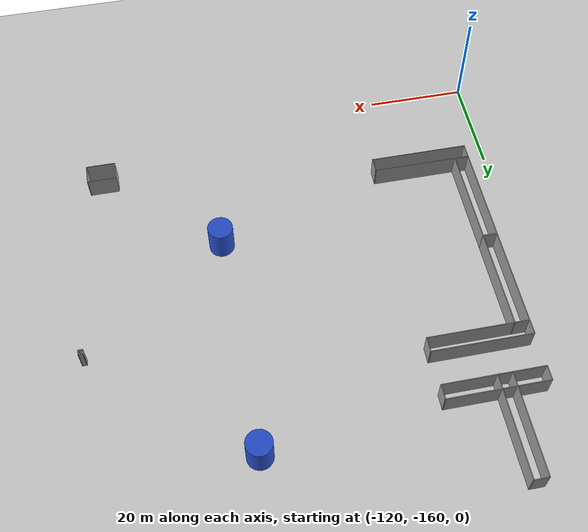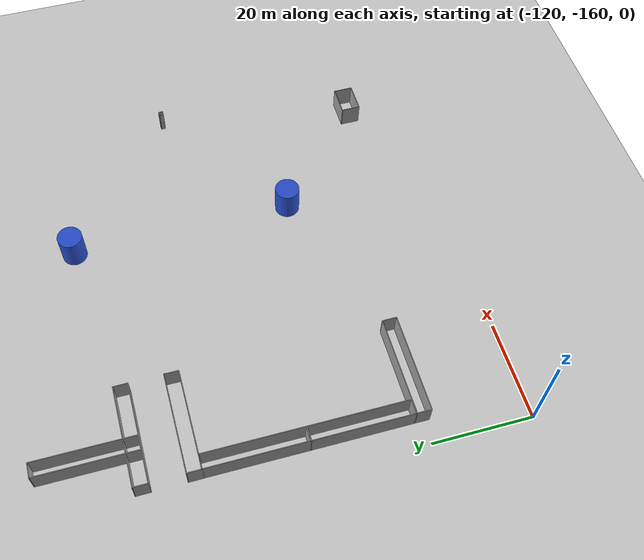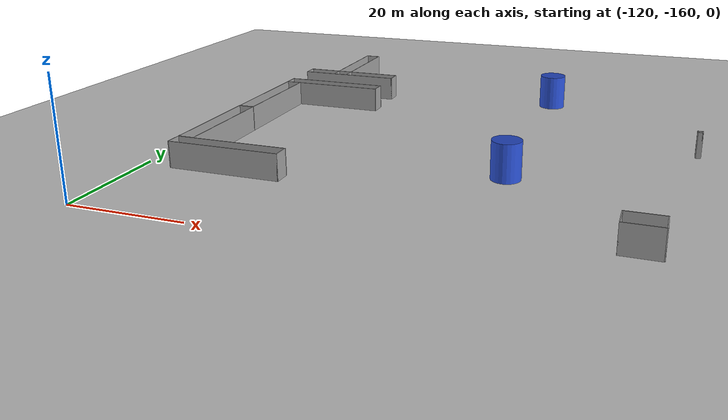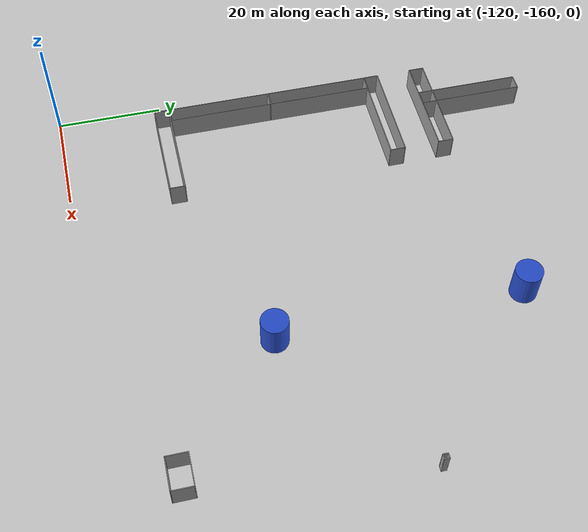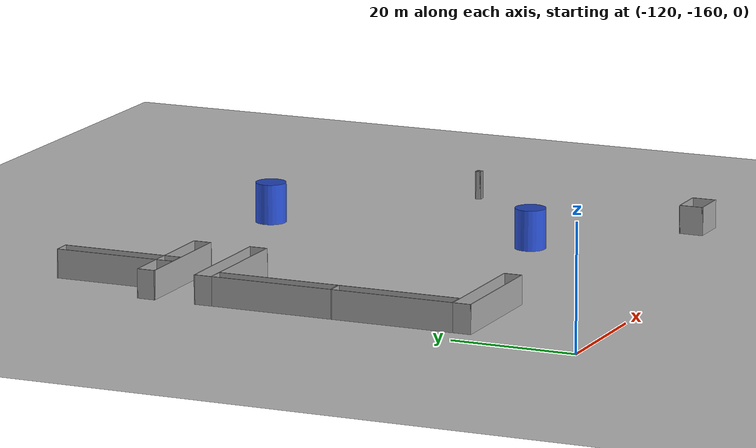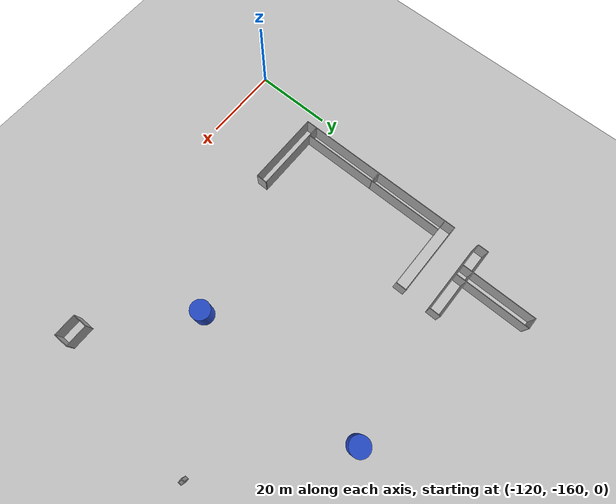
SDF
<sdf version="1.6">
 <world name="default">
  <model name="ground_plane">
   <static>1</static>
   <link name="link">
    <collision name="collision">
     <geometry><plane><normal>0 0 1</normal><size>320 320</size></plane></geometry>
     <surface>
      <contact><collide_bitmask>65535</collide_bitmask></contact>
      <friction><ode><mu>100</mu><mu2>50</mu2></ode></friction>
     </surface>
    </collision>
    <visual name="visual">
     <cast_shadows>0</cast_shadows>
     <geometry><plane><normal>0 0 1</normal><size>320 320</size></plane></geometry>
     <material>
      <script><uri>file://media/materials/scripts/gazebo.material</uri><name>Gazebo/Grey</name></script>
     </material>
    </visual>
   </link>
  </model>
  <model name="box_1mx1m_15">
   <pose>-32.5703 -107.582 0 0 -0 0</pose>
   <link name="Wall_10">
    <collision name="Wall_10_Collision">
     <geometry><box><size>1 0.15 6.555</size></box></geometry>
     <pose>0 0 1.25 0 -0 0</pose>
    </collision>
    <visual name="Wall_10_Visual">
     <pose>0 0 1.25 0 -0 0</pose>
     <geometry><box><size>1 0.15 6.555</size></box></geometry>
     <material>
      <script><uri>file://media/materials/scripts/gazebo.material</uri><name>Gazebo/Grey</name></script>
      <ambient>1 1 1 1</ambient>
     </material>
     <meta><layer>0</layer></meta>
    </visual>
    <pose>-0.425 0 0 0 -0 -1.5708</pose>
   </link>
   <link name="Wall_11">
    <collision name="Wall_11_Collision">
     <geometry><box><size>1 0.15 6.555</size></box></geometry>
     <pose>0 0 1.25 0 -0 0</pose>
    </collision>
    <visual name="Wall_11_Visual">
     <pose>0 0 1.25 0 -0 0</pose>
     <geometry><box><size>1 0.15 6.555</size></box></geometry>
     <material>
      <script><uri>file://media/materials/scripts/gazebo.material</uri><name>Gazebo/Grey</name></script>
      <ambient>1 1 1 1</ambient>
     </material>
     <meta><layer>0</layer></meta>
    </visual>
    <pose>0 -0.425 0 0 -0 0</pose>
   </link>
   <link name="Wall_12">
    <collision name="Wall_12_Collision">
     <geometry><box><size>1 0.15 6.555</size></box></geometry>
     <pose>0 0 1.25 0 -0 0</pose>
    </collision>
    <visual name="Wall_12_Visual">
     <pose>0 0 1.25 0 -0 0</pose>
     <geometry><box><size>1 0.15 6.555</size></box></geometry>
     <material>
      <script><uri>file://media/materials/scripts/gazebo.material</uri><name>Gazebo/Grey</name></script>
      <ambient>1 1 1 1</ambient>
     </material>
     <meta><layer>0</layer></meta>
    </visual>
    <pose>0.425 0 0 0 -0 1.5708</pose>
   </link>
   <link name="Wall_13">
    <collision name="Wall_13_Collision">
     <geometry><box><size>1 0.15 6.555</size></box></geometry>
     <pose>0 0 1.25 0 -0 0</pose>
    </collision>
    <visual name="Wall_13_Visual">
     <pose>0 0 1.25 0 -0 0</pose>
     <geometry><box><size>1 0.15 6.555</size></box></geometry>
     <material>
      <script><uri>file://media/materials/scripts/gazebo.material</uri><name>Gazebo/Grey</name></script>
      <ambient>1 1 1 1</ambient>
     </material>
     <meta><layer>0</layer></meta>
    </visual>
    <pose>0 0.425 0 0 -0 3.14159</pose>
   </link>
   <static>1</static>
  </model>
  <model name="base4x6_8_clone">
   <pose>-39.3367 -148.582 0 0 -0 0</pose>
   <link name="Wall_23">
    <collision name="Wall_23_Collision">
     <geometry><box><size>4 0.15 6.555</size></box></geometry>
     <pose>0 0 1.25 0 -0 0</pose>
    </collision>
    <visual name="Wall_23_Visual">
     <pose>0 0 1.25 0 -0 0</pose>
     <geometry><box><size>4 0.15 6.555</size></box></geometry>
     <material>
      <script><uri>file://media/materials/scripts/gazebo.material</uri><name>Gazebo/Grey</name></script>
      <ambient>1 1 1 1</ambient>
     </material>
     <meta><layer>0</layer></meta>
    </visual>
    <pose>-2.925 0 0 0 -0 -1.5708</pose>
   </link>
   <link name="Wall_24">
    <collision name="Wall_24_Collision">
     <geometry><box><size>6 0.15 6.555</size></box></geometry>
     <pose>0 0 1.25 0 -0 0</pose>
    </collision>
    <visual name="Wall_24_Visual">
     <pose>0 0 1.25 0 -0 0</pose>
     <geometry><box><size>6 0.15 6.555</size></box></geometry>
     <material>
      <script><uri>file://media/materials/scripts/gazebo.material</uri><name>Gazebo/Grey</name></script>
      <ambient>1 1 1 1</ambient>
     </material>
     <meta><layer>0</layer></meta>
    </visual>
    <pose>-0 -1.925 0 0 -0 0</pose>
   </link>
   <link name="Wall_25">
    <collision name="Wall_25_Collision">
     <geometry><box><size>4 0.15 6.555</size></box></geometry>
     <pose>0 0 1.25 0 -0 0</pose>
    </collision>
    <visual name="Wall_25_Visual">
     <pose>0 0 1.25 0 -0 0</pose>
     <geometry><box><size>4 0.15 6.555</size></box></geometry>
     <material>
      <script><uri>file://media/materials/scripts/gazebo.material</uri><name>Gazebo/Grey</name></script>
      <ambient>1 1 1 1</ambient>
     </material>
     <meta><layer>0</layer></meta>
    </visual>
    <pose>2.925 0 0 0 -0 1.5708</pose>
   </link>
   <link name="Wall_26">
    <collision name="Wall_26_Collision">
     <geometry><box><size>6 0.15 6.555</size></box></geometry>
     <pose>0 0 1.25 0 -0 0</pose>
    </collision>
    <visual name="Wall_26_Visual">
     <pose>0 0 1.25 0 -0 0</pose>
     <geometry><box><size>6 0.15 6.555</size></box></geometry>
     <material>
      <script><uri>file://media/materials/scripts/gazebo.material</uri><name>Gazebo/Grey</name></script>
      <ambient>1 1 1 1</ambient>
     </material>
     <meta><layer>0</layer></meta>
    </visual>
    <pose>-0 1.925 0 0 -0 3.14159</pose>
   </link>
   <static>1</static>
  </model>
  <model name="unit_cylinder_r2.5_l1_clone_4">
   <link name="link">
    <inertial>
     <mass>1</mass>
     <inertia><ixx>0.145833</ixx><ixy>0</ixy><ixz>0</ixz><iyy>0.145833</iyy><iyz>0</iyz><izz>0.125</izz></inertia>
    </inertial>
    <visual name="visual">
     <geometry><cylinder><radius>2.5</radius><length>6.555</length></cylinder></geometry>
     <material>
      <script><name>Gazebo/Blue</name><uri>file://media/materials/scripts/gazebo.material</uri></script>
      <shader type="vertex"><normal_map>__default__</normal_map></shader>
      <ambient>0.3 0.3 0.3 1</ambient>
      <diffuse>0.7 0.7 0.7 1</diffuse>
      <specular>0.01 0.01 0.01 1</specular>
      <emissive>0 0 0 1</emissive>
     </material>
    </visual>
    <collision name="collision">
     <geometry><cylinder><radius>2.5</radius><length>6.555</length></cylinder></geometry>
     <surface>
      <friction>
       <ode><mu>1</mu><mu2>1</mu2><fdir1>0 0 0</fdir1><slip1>0</slip1><slip2>0</slip2></ode>
       <torsional>
        <coefficient>1</coefficient>
        <patch_radius>0</patch_radius>
        <surface_radius>0</surface_radius>
        <use_patch_radius>1</use_patch_radius>
        <ode><slip>0</slip></ode>
       </torsional>
      </friction>
      <bounce><restitution_coefficient>0</restitution_coefficient><threshold>1e+06</threshold></bounce>
      <contact>
       <collide_without_contact>0</collide_without_contact>
       <collide_without_contact_bitmask>1</collide_without_contact_bitmask>
       <collide_bitmask>1</collide_bitmask>
       <ode>
        <soft_cfm>0</soft_cfm>
        <soft_erp>0.2</soft_erp>
        <kp>1e+13</kp>
        <kd>1</kd>
        <max_vel>0.01</max_vel>
        <min_depth>0</min_depth>
       </ode>
       <bullet>
        <split_impulse>1</split_impulse>
        <split_impulse_penetration_threshold>-0.01</split_impulse_penetration_threshold>
        <soft_cfm>0</soft_cfm>
        <soft_erp>0.2</soft_erp>
        <kp>1e+13</kp>
        <kd>1</kd>
       </bullet>
      </contact>
     </surface>
    </collision>
   </link>
   <static>0</static>
   <pose>-61.6478 -83.3297 3.27733 5.6e-05 5.4e-05 -1.9e-05</pose>
  </model>
  <model name="unit_cylinder_r2.5_l1_clone_clone_6">
   <link name="link">
    <inertial>
     <mass>1</mass>
     <inertia><ixx>0.145833</ixx><ixy>0</ixy><ixz>0</ixz><iyy>0.145833</iyy><iyz>0</iyz><izz>0.125</izz></inertia>
    </inertial>
    <visual name="visual">
     <geometry><cylinder><radius>2.5</radius><length>6.555</length></cylinder></geometry>
     <material>
      <script><name>Gazebo/Blue</name><uri>file://media/materials/scripts/gazebo.material</uri></script>
      <shader type="vertex"><normal_map>__default__</normal_map></shader>
      <ambient>0.3 0.3 0.3 1</ambient>
      <diffuse>0.7 0.7 0.7 1</diffuse>
      <specular>0.01 0.01 0.01 1</specular>
      <emissive>0 0 0 1</emissive>
     </material>
    </visual>
    <collision name="collision">
     <geometry><cylinder><radius>2.5</radius><length>6.555</length></cylinder></geometry>
     <surface>
      <friction>
       <ode><mu>1</mu><mu2>1</mu2><fdir1>0 0 0</fdir1><slip1>0</slip1><slip2>0</slip2></ode>
       <torsional>
        <coefficient>1</coefficient>
        <patch_radius>0</patch_radius>
        <surface_radius>0</surface_radius>
        <use_patch_radius>1</use_patch_radius>
        <ode><slip>0</slip></ode>
       </torsional>
      </friction>
      <bounce><restitution_coefficient>0</restitution_coefficient><threshold>1e+06</threshold></bounce>
      <contact>
       <collide_without_contact>0</collide_without_contact>
       <collide_without_contact_bitmask>1</collide_without_contact_bitmask>
       <collide_bitmask>1</collide_bitmask>
       <ode>
        <soft_cfm>0</soft_cfm>
        <soft_erp>0.2</soft_erp>
        <kp>1e+13</kp>
        <kd>1</kd>
        <max_vel>0.01</max_vel>
        <min_depth>0</min_depth>
       </ode>
       <bullet>
        <split_impulse>1</split_impulse>
        <split_impulse_penetration_threshold>-0.01</split_impulse_penetration_threshold>
        <soft_cfm>0</soft_cfm>
        <soft_erp>0.2</soft_erp>
        <kp>1e+13</kp>
        <kd>1</kd>
       </bullet>
      </contact>
     </surface>
    </collision>
   </link>
   <static>0</static>
   <pose>-61.4924 -128.641 3.27733 5.6e-05 5.4e-05 -1.4e-05</pose>
  </model>
  <model name="base3x20_clone_1">
   <pose>-105.35 -96.9394 0 0 -0 0</pose>
   <link name="Wall_16">
    <collision name="Wall_16_Collision">
     <geometry><box><size>3 0.15 6.555</size></box></geometry>
     <pose>0 0 1.25 0 -0 0</pose>
    </collision>
    <visual name="Wall_16_Visual">
     <pose>0 0 1.25 0 -0 0</pose>
     <geometry><box><size>3 0.15 6.555</size></box></geometry>
     <material>
      <script><uri>file://media/materials/scripts/gazebo.material</uri><name>Gazebo/Grey</name></script>
      <ambient>1 1 1 1</ambient>
     </material>
     <meta><layer>0</layer></meta>
    </visual>
    <pose>-9.925 -0 0 0 -0 -1.5708</pose>
   </link>
   <link name="Wall_17">
    <collision name="Wall_17_Collision">
     <geometry><box><size>20 0.15 6.555</size></box></geometry>
     <pose>0 0 1.25 0 -0 0</pose>
    </collision>
    <visual name="Wall_17_Visual">
     <pose>0 0 1.25 0 -0 0</pose>
     <geometry><box><size>20 0.15 6.555</size></box></geometry>
     <material>
      <script><uri>file://media/materials/scripts/gazebo.material</uri><name>Gazebo/Grey</name></script>
      <ambient>1 1 1 1</ambient>
     </material>
     <meta><layer>0</layer></meta>
    </visual>
    <pose>-0 -1.425 0 0 -0 0</pose>
   </link>
   <link name="Wall_18">
    <collision name="Wall_18_Collision">
     <geometry><box><size>3 0.15 6.555</size></box></geometry>
     <pose>0 0 1.25 0 -0 0</pose>
    </collision>
    <visual name="Wall_18_Visual">
     <pose>0 0 1.25 0 -0 0</pose>
     <geometry><box><size>3 0.15 6.555</size></box></geometry>
     <material>
      <script><uri>file://media/materials/scripts/gazebo.material</uri><name>Gazebo/Grey</name></script>
      <ambient>1 1 1 1</ambient>
     </material>
     <meta><layer>0</layer></meta>
    </visual>
    <pose>9.925 -0 0 0 -0 1.5708</pose>
   </link>
   <link name="Wall_19">
    <collision name="Wall_19_Collision">
     <geometry><box><size>20 0.15 6.555</size></box></geometry>
     <pose>0 0 1.25 0 -0 0</pose>
    </collision>
    <visual name="Wall_19_Visual">
     <pose>0 0 1.25 0 -0 0</pose>
     <geometry><box><size>20 0.15 6.555</size></box></geometry>
     <material>
      <script><uri>file://media/materials/scripts/gazebo.material</uri><name>Gazebo/Grey</name></script>
      <ambient>1 1 1 1</ambient>
     </material>
     <meta><layer>0</layer></meta>
    </visual>
    <pose>-0 1.425 0 0 -0 3.14159</pose>
   </link>
   <static>1</static>
  </model>
  <model name="base3x20_clone_0">
   <pose>-105.396 -87.3218 0 0 -0 0</pose>
   <link name="Wall_16">
    <collision name="Wall_16_Collision">
     <geometry><box><size>3 0.15 6.555</size></box></geometry>
     <pose>0 0 1.25 0 -0 0</pose>
    </collision>
    <visual name="Wall_16_Visual">
     <pose>0 0 1.25 0 -0 0</pose>
     <geometry><box><size>3 0.15 6.555</size></box></geometry>
     <material>
      <script><uri>file://media/materials/scripts/gazebo.material</uri><name>Gazebo/Grey</name></script>
      <ambient>1 1 1 1</ambient>
     </material>
     <meta><layer>0</layer></meta>
    </visual>
    <pose>-9.925 -0 0 0 -0 -1.5708</pose>
   </link>
   <link name="Wall_17">
    <collision name="Wall_17_Collision">
     <geometry><box><size>20 0.15 6.555</size></box></geometry>
     <pose>0 0 1.25 0 -0 0</pose>
    </collision>
    <visual name="Wall_17_Visual">
     <pose>0 0 1.25 0 -0 0</pose>
     <geometry><box><size>20 0.15 6.555</size></box></geometry>
     <material>
      <script><uri>file://media/materials/scripts/gazebo.material</uri><name>Gazebo/Grey</name></script>
      <ambient>1 1 1 1</ambient>
     </material>
     <meta><layer>0</layer></meta>
    </visual>
    <pose>-0 -1.425 0 0 -0 0</pose>
   </link>
   <link name="Wall_18">
    <collision name="Wall_18_Collision">
     <geometry><box><size>3 0.15 6.555</size></box></geometry>
     <pose>0 0 1.25 0 -0 0</pose>
    </collision>
    <visual name="Wall_18_Visual">
     <pose>0 0 1.25 0 -0 0</pose>
     <geometry><box><size>3 0.15 6.555</size></box></geometry>
     <material>
      <script><uri>file://media/materials/scripts/gazebo.material</uri><name>Gazebo/Grey</name></script>
      <ambient>1 1 1 1</ambient>
     </material>
     <meta><layer>0</layer></meta>
    </visual>
    <pose>9.925 -0 0 0 -0 1.5708</pose>
   </link>
   <link name="Wall_19">
    <collision name="Wall_19_Collision">
     <geometry><box><size>20 0.15 6.555</size></box></geometry>
     <pose>0 0 1.25 0 -0 0</pose>
    </collision>
    <visual name="Wall_19_Visual">
     <pose>0 0 1.25 0 -0 0</pose>
     <geometry><box><size>20 0.15 6.555</size></box></geometry>
     <material>
      <script><uri>file://media/materials/scripts/gazebo.material</uri><name>Gazebo/Grey</name></script>
      <ambient>1 1 1 1</ambient>
     </material>
     <meta><layer>0</layer></meta>
    </visual>
    <pose>-0 1.425 0 0 -0 3.14159</pose>
   </link>
   <static>1</static>
  </model>
  <model name="base20x3_3_clone_clone_9">
   <pose>-107.435 -78.7624 0 0 -0 0</pose>
   <link name="Wall_21">
    <collision name="Wall_21_Collision">
     <geometry><box><size>20 0.15 6.555</size></box></geometry>
     <pose>0 0 1.25 0 -0 0</pose>
    </collision>
    <visual name="Wall_21_Visual">
     <pose>0 0 1.25 0 -0 0</pose>
     <geometry><box><size>20 0.15 6.555</size></box></geometry>
     <material>
      <script><uri>file://media/materials/scripts/gazebo.material</uri><name>Gazebo/Grey</name></script>
      <ambient>1 1 1 1</ambient>
     </material>
     <meta><layer>0</layer></meta>
    </visual>
    <pose>-1.425 -0 0 0 -0 -1.5708</pose>
   </link>
   <link name="Wall_22">
    <collision name="Wall_22_Collision">
     <geometry><box><size>3 0.15 6.555</size></box></geometry>
     <pose>0 0 1.25 0 -0 0</pose>
    </collision>
    <visual name="Wall_22_Visual">
     <pose>0 0 1.25 0 -0 0</pose>
     <geometry><box><size>3 0.15 6.555</size></box></geometry>
     <material>
      <script><uri>file://media/materials/scripts/gazebo.material</uri><name>Gazebo/Grey</name></script>
      <ambient>1 1 1 1</ambient>
     </material>
     <meta><layer>0</layer></meta>
    </visual>
    <pose>-0 -9.925 0 0 -0 0</pose>
   </link>
   <link name="Wall_23">
    <collision name="Wall_23_Collision">
     <geometry><box><size>20 0.15 6.555</size></box></geometry>
     <pose>0 0 1.25 0 -0 0</pose>
    </collision>
    <visual name="Wall_23_Visual">
     <pose>0 0 1.25 0 -0 0</pose>
     <geometry><box><size>20 0.15 6.555</size></box></geometry>
     <material>
      <script><uri>file://media/materials/scripts/gazebo.material</uri><name>Gazebo/Grey</name></script>
      <ambient>1 1 1 1</ambient>
     </material>
     <meta><layer>0</layer></meta>
    </visual>
    <pose>1.425 -0 0 0 -0 1.5708</pose>
   </link>
   <link name="Wall_24">
    <collision name="Wall_24_Collision">
     <geometry><box><size>3 0.15 6.555</size></box></geometry>
     <pose>0 0 1.25 0 -0 0</pose>
    </collision>
    <visual name="Wall_24_Visual">
     <pose>0 0 1.25 0 -0 0</pose>
     <geometry><box><size>3 0.15 6.555</size></box></geometry>
     <material>
      <script><uri>file://media/materials/scripts/gazebo.material</uri><name>Gazebo/Grey</name></script>
      <ambient>1 1 1 1</ambient>
     </material>
     <meta><layer>0</layer></meta>
    </visual>
    <pose>-0 9.925 0 0 -0 3.14159</pose>
   </link>
   <static>1</static>
  </model>
  <model name="base20x3_3_clone_clone_10">
   <pose>-113.822 -108.278 0 0 -0 0</pose>
   <link name="Wall_21">
    <collision name="Wall_21_Collision">
     <geometry><box><size>20 0.15 6.555</size></box></geometry>
     <pose>0 0 1.25 0 -0 0</pose>
    </collision>
    <visual name="Wall_21_Visual">
     <pose>0 0 1.25 0 -0 0</pose>
     <geometry><box><size>20 0.15 6.555</size></box></geometry>
     <material>
      <script><uri>file://media/materials/scripts/gazebo.material</uri><name>Gazebo/Grey</name></script>
      <ambient>1 1 1 1</ambient>
     </material>
     <meta><layer>0</layer></meta>
    </visual>
    <pose>-1.425 -0 0 0 -0 -1.5708</pose>
   </link>
   <link name="Wall_22">
    <collision name="Wall_22_Collision">
     <geometry><box><size>3 0.15 6.555</size></box></geometry>
     <pose>0 0 1.25 0 -0 0</pose>
    </collision>
    <visual name="Wall_22_Visual">
     <pose>0 0 1.25 0 -0 0</pose>
     <geometry><box><size>3 0.15 6.555</size></box></geometry>
     <material>
      <script><uri>file://media/materials/scripts/gazebo.material</uri><name>Gazebo/Grey</name></script>
      <ambient>1 1 1 1</ambient>
     </material>
     <meta><layer>0</layer></meta>
    </visual>
    <pose>-0 -9.925 0 0 -0 0</pose>
   </link>
   <link name="Wall_23">
    <collision name="Wall_23_Collision">
     <geometry><box><size>20 0.15 6.555</size></box></geometry>
     <pose>0 0 1.25 0 -0 0</pose>
    </collision>
    <visual name="Wall_23_Visual">
     <pose>0 0 1.25 0 -0 0</pose>
     <geometry><box><size>20 0.15 6.555</size></box></geometry>
     <material>
      <script><uri>file://media/materials/scripts/gazebo.material</uri><name>Gazebo/Grey</name></script>
      <ambient>1 1 1 1</ambient>
     </material>
     <meta><layer>0</layer></meta>
    </visual>
    <pose>1.425 -0 0 0 -0 1.5708</pose>
   </link>
   <link name="Wall_24">
    <collision name="Wall_24_Collision">
     <geometry><box><size>3 0.15 6.555</size></box></geometry>
     <pose>0 0 1.25 0 -0 0</pose>
    </collision>
    <visual name="Wall_24_Visual">
     <pose>0 0 1.25 0 -0 0</pose>
     <geometry><box><size>3 0.15 6.555</size></box></geometry>
     <material>
      <script><uri>file://media/materials/scripts/gazebo.material</uri><name>Gazebo/Grey</name></script>
      <ambient>1 1 1 1</ambient>
     </material>
     <meta><layer>0</layer></meta>
    </visual>
    <pose>-0 9.925 0 0 -0 3.14159</pose>
   </link>
   <static>1</static>
  </model>
  <model name="base20x3_3_clone_clone_11">
   <pose>-113.826 -128.277 0 0 -0 0</pose>
   <link name="Wall_21">
    <collision name="Wall_21_Collision">
     <geometry><box><size>20 0.15 6.555</size></box></geometry>
     <pose>0 0 1.25 0 -0 0</pose>
    </collision>
    <visual name="Wall_21_Visual">
     <pose>0 0 1.25 0 -0 0</pose>
     <geometry><box><size>20 0.15 6.555</size></box></geometry>
     <material>
      <script><uri>file://media/materials/scripts/gazebo.material</uri><name>Gazebo/Grey</name></script>
      <ambient>1 1 1 1</ambient>
     </material>
     <meta><layer>0</layer></meta>
    </visual>
    <pose>-1.425 -0 0 0 -0 -1.5708</pose>
   </link>
   <link name="Wall_22">
    <collision name="Wall_22_Collision">
     <geometry><box><size>3 0.15 6.555</size></box></geometry>
     <pose>0 0 1.25 0 -0 0</pose>
    </collision>
    <visual name="Wall_22_Visual">
     <pose>0 0 1.25 0 -0 0</pose>
     <geometry><box><size>3 0.15 6.555</size></box></geometry>
     <material>
      <script><uri>file://media/materials/scripts/gazebo.material</uri><name>Gazebo/Grey</name></script>
      <ambient>1 1 1 1</ambient>
     </material>
     <meta><layer>0</layer></meta>
    </visual>
    <pose>-0 -9.925 0 0 -0 0</pose>
   </link>
   <link name="Wall_23">
    <collision name="Wall_23_Collision">
     <geometry><box><size>20 0.15 6.555</size></box></geometry>
     <pose>0 0 1.25 0 -0 0</pose>
    </collision>
    <visual name="Wall_23_Visual">
     <pose>0 0 1.25 0 -0 0</pose>
     <geometry><box><size>20 0.15 6.555</size></box></geometry>
     <material>
      <script><uri>file://media/materials/scripts/gazebo.material</uri><name>Gazebo/Grey</name></script>
      <ambient>1 1 1 1</ambient>
     </material>
     <meta><layer>0</layer></meta>
    </visual>
    <pose>1.425 -0 0 0 -0 1.5708</pose>
   </link>
   <link name="Wall_24">
    <collision name="Wall_24_Collision">
     <geometry><box><size>3 0.15 6.555</size></box></geometry>
     <pose>0 0 1.25 0 -0 0</pose>
    </collision>
    <visual name="Wall_24_Visual">
     <pose>0 0 1.25 0 -0 0</pose>
     <geometry><box><size>3 0.15 6.555</size></box></geometry>
     <material>
      <script><uri>file://media/materials/scripts/gazebo.material</uri><name>Gazebo/Grey</name></script>
      <ambient>1 1 1 1</ambient>
     </material>
     <meta><layer>0</layer></meta>
    </visual>
    <pose>-0 9.925 0 0 -0 3.14159</pose>
   </link>
   <static>1</static>
  </model>
  <model name="base3x20_clone_1_clone">
   <pose>-105.32 -139.734 0 0 -0 0</pose>
   <link name="Wall_16">
    <collision name="Wall_16_Collision">
     <geometry><box><size>3 0.15 6.555</size></box></geometry>
     <pose>0 0 1.25 0 -0 0</pose>
    </collision>
    <visual name="Wall_16_Visual">
     <pose>0 0 1.25 0 -0 0</pose>
     <geometry><box><size>3 0.15 6.555</size></box></geometry>
     <material>
      <script><uri>file://media/materials/scripts/gazebo.material</uri><name>Gazebo/Grey</name></script>
      <ambient>1 1 1 1</ambient>
     </material>
     <meta><layer>0</layer></meta>
    </visual>
    <pose>-9.925 -0 0 0 -0 -1.5708</pose>
   </link>
   <link name="Wall_17">
    <collision name="Wall_17_Collision">
     <geometry><box><size>20 0.15 6.555</size></box></geometry>
     <pose>0 0 1.25 0 -0 0</pose>
    </collision>
    <visual name="Wall_17_Visual">
     <pose>0 0 1.25 0 -0 0</pose>
     <geometry><box><size>20 0.15 6.555</size></box></geometry>
     <material>
      <script><uri>file://media/materials/scripts/gazebo.material</uri><name>Gazebo/Grey</name></script>
      <ambient>1 1 1 1</ambient>
     </material>
     <meta><layer>0</layer></meta>
    </visual>
    <pose>-0 -1.425 0 0 -0 0</pose>
   </link>
   <link name="Wall_18">
    <collision name="Wall_18_Collision">
     <geometry><box><size>3 0.15 6.555</size></box></geometry>
     <pose>0 0 1.25 0 -0 0</pose>
    </collision>
    <visual name="Wall_18_Visual">
     <pose>0 0 1.25 0 -0 0</pose>
     <geometry><box><size>3 0.15 6.555</size></box></geometry>
     <material>
      <script><uri>file://media/materials/scripts/gazebo.material</uri><name>Gazebo/Grey</name></script>
      <ambient>1 1 1 1</ambient>
     </material>
     <meta><layer>0</layer></meta>
    </visual>
    <pose>9.925 -0 0 0 -0 1.5708</pose>
   </link>
   <link name="Wall_19">
    <collision name="Wall_19_Collision">
     <geometry><box><size>20 0.15 6.555</size></box></geometry>
     <pose>0 0 1.25 0 -0 0</pose>
    </collision>
    <visual name="Wall_19_Visual">
     <pose>0 0 1.25 0 -0 0</pose>
     <geometry><box><size>20 0.15 6.555</size></box></geometry>
     <material>
      <script><uri>file://media/materials/scripts/gazebo.material</uri><name>Gazebo/Grey</name></script>
      <ambient>1 1 1 1</ambient>
     </material>
     <meta><layer>0</layer></meta>
    </visual>
    <pose>-0 1.425 0 0 -0 3.14159</pose>
   </link>
   <static>1</static>
  </model>
 </world>
</sdf>
